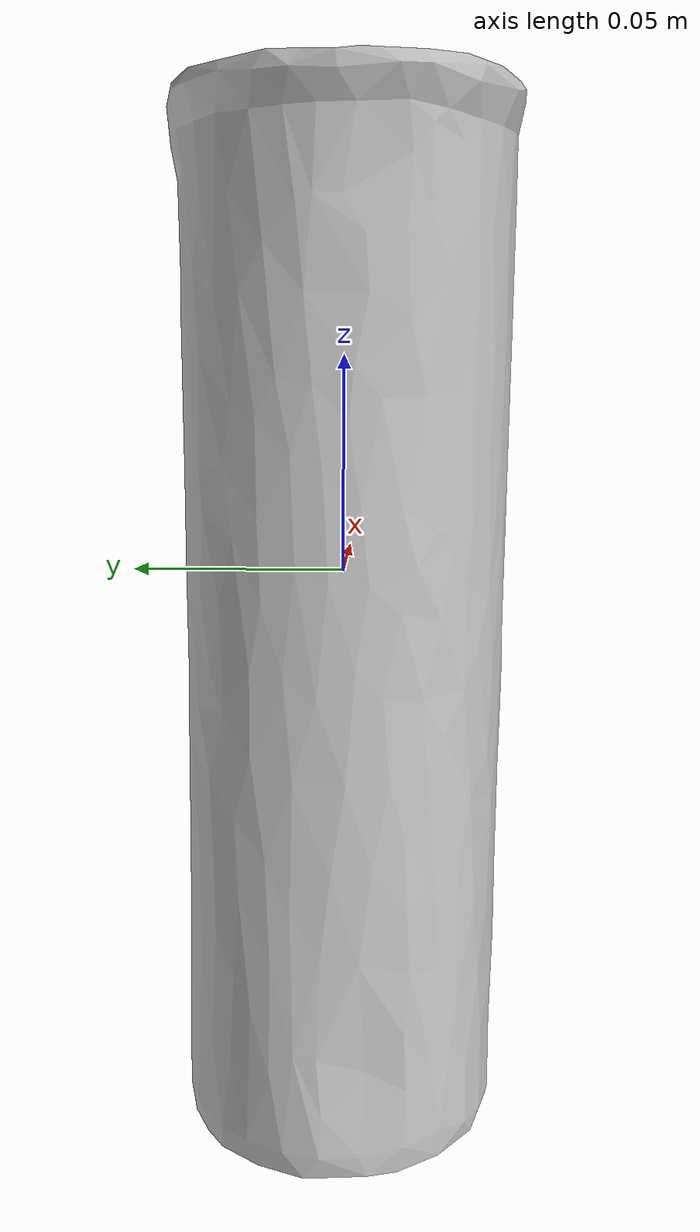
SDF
<?xml version="1.0" ?>
<sdf version="1.4">
  <model name="pringles_salt">
    <link name="pringles_salt_link">
      <inertial>
        <pose>0 0 0 0 0 0</pose>
        <mass>0.08</mass>
      </inertial>

      <visual name="pringles_salt_visual">
        <pose>0 0 0 0 0 0</pose>
        <material>
          <script>
            <uri>model://pringles_salt/materials/scripts</uri>
            <uri>model://pringles_salt/materials/textures</uri>
            <name>pringles_salt</name>
          </script>
        </material>
        <geometry>
          <mesh>
            <uri>model://pringles_salt/meshes/pringles_salt.dae</uri>
          </mesh>
        </geometry>
      </visual>

      <collision name="pringles_salt_collision">
        <pose>0 0 0 0 0 0</pose>
        <geometry>
          <mesh>
            <uri>model://pringles_salt/meshes/pringles_salt.dae</uri>
          </mesh>
        </geometry>
        <surface>
          <friction>
            <ode>
              <mu>0.8</mu>
              <mu2>0.8</mu2>
              <fdir1>0.0 0.0 0.0</fdir1>
              <slip1>0.01</slip1>
              <slip2>0.01</slip2>
            </ode>
          </friction>
        </surface>
      </collision>

    </link>
  </model>
</sdf>
